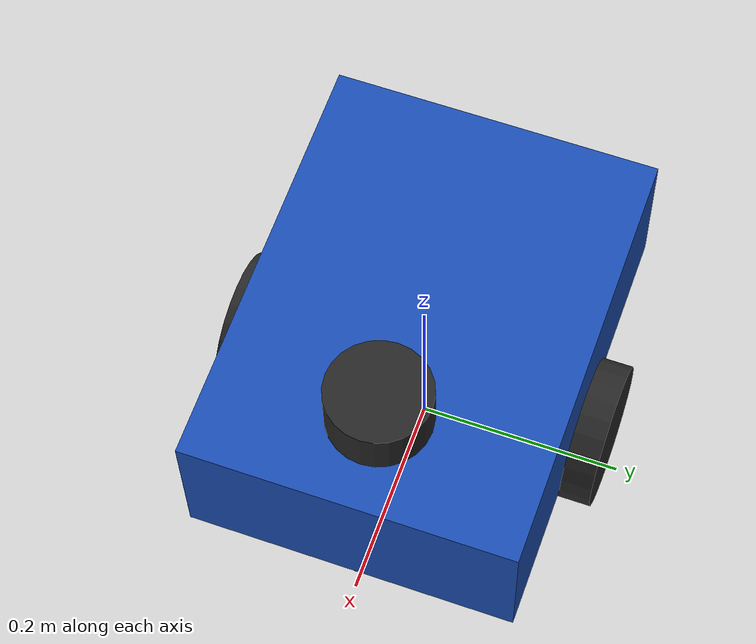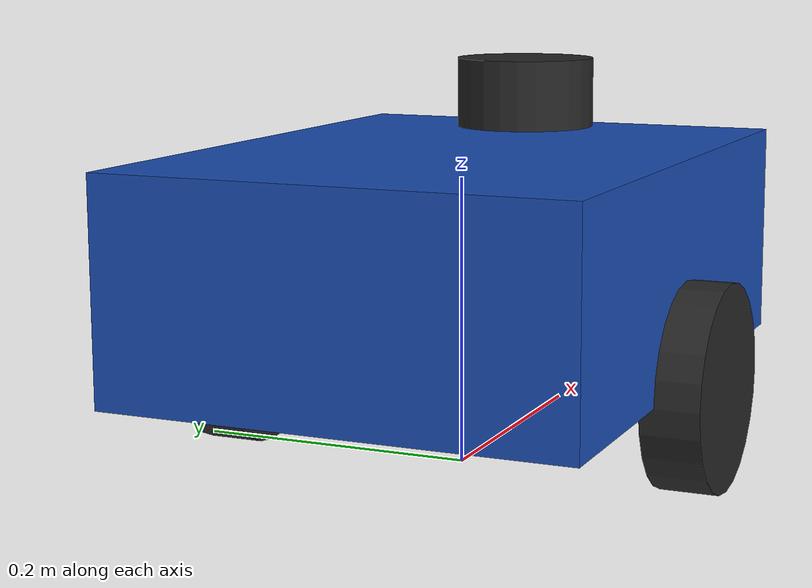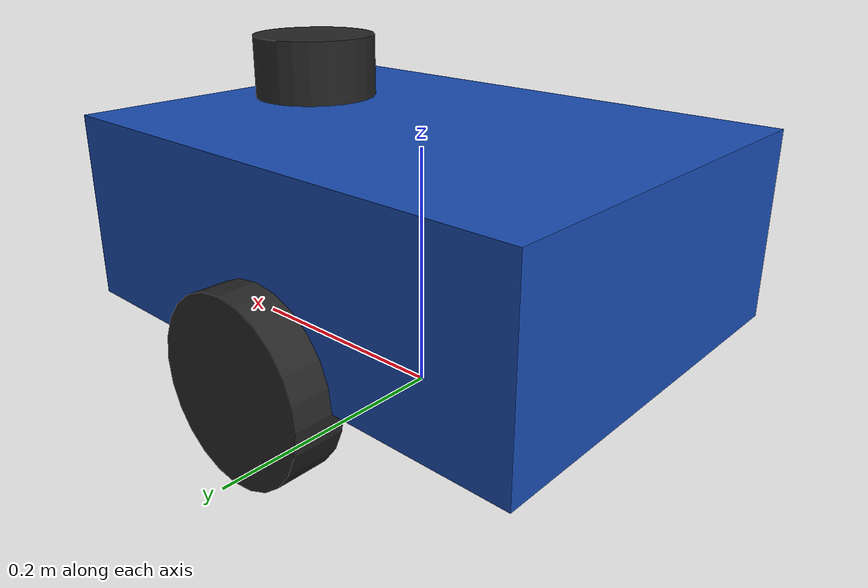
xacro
<?xml version="1.0"?>
<robot name="bip_robot" xmlns:xacro="http://www.ros.org/wiki/xacro">

  <xacro:property name="base_len" value="0.42"/>
  <xacro:property name="base_wid" value="0.32"/>
  <xacro:property name="base_hgt" value="0.15"/>
  <xacro:property name="wheel_rad" value="0.07"/>
  <xacro:property name="wheel_wid" value="0.04"/>
  <xacro:property name="wheel_sep" value="0.34"/>

  <material name="body_blue"><color rgba="0.1 0.3 0.7 1.0"/></material>
  <material name="dark"><color rgba="0.15 0.15 0.15 1.0"/></material>

  <xacro:macro name="box_inertia" params="m x y z">
    <inertial>
      <mass value="${m}"/>
      <inertia ixx="${m/12.0*(y*y+z*z)}" ixy="0" ixz="0"
               iyy="${m/12.0*(x*x+z*z)}" iyz="0"
               izz="${m/12.0*(x*x+y*y)}"/>
    </inertial>
  </xacro:macro>

  <xacro:macro name="cyl_inertia" params="m r h">
    <inertial>
      <mass value="${m}"/>
      <inertia ixx="${m*(3*r*r+h*h)/12.0}" ixy="0" ixz="0"
               iyy="${m*(3*r*r+h*h)/12.0}" iyz="0" izz="${m*r*r/2.0}"/>
    </inertial>
  </xacro:macro>

  <!-- ============================ base ============================ -->
  <link name="base_footprint"/>

  <joint name="base_joint" type="fixed">
    <parent link="base_footprint"/>
    <child link="base_link"/>
    <origin xyz="0 0 ${wheel_rad}" rpy="0 0 0"/>
  </joint>

  <link name="base_link">
    <visual>
      <origin xyz="0 0 ${base_hgt/2}"/>
      <geometry><box size="${base_len} ${base_wid} ${base_hgt}"/></geometry>
      <material name="body_blue"/>
    </visual>
    <collision>
      <origin xyz="0 0 ${base_hgt/2}"/>
      <geometry><box size="${base_len} ${base_wid} ${base_hgt}"/></geometry>
    </collision>
    <xacro:box_inertia m="8.0" x="${base_len}" y="${base_wid}" z="${base_hgt}"/>
  </link>

  <!-- ============================ wheels ============================ -->
  <xacro:macro name="wheel" params="prefix reflect">
    <link name="${prefix}_wheel_link">
      <visual>
        <origin rpy="${pi/2} 0 0"/>
        <geometry><cylinder radius="${wheel_rad}" length="${wheel_wid}"/></geometry>
        <material name="dark"/>
      </visual>
      <collision>
        <origin rpy="${pi/2} 0 0"/>
        <geometry><cylinder radius="${wheel_rad}" length="${wheel_wid}"/></geometry>
      </collision>
      <xacro:cyl_inertia m="0.8" r="${wheel_rad}" h="${wheel_wid}"/>
    </link>
    <joint name="${prefix}_wheel_joint" type="continuous">
      <parent link="base_link"/>
      <child link="${prefix}_wheel_link"/>
      <origin xyz="0 ${reflect*wheel_sep/2} 0" rpy="0 0 0"/>
      <axis xyz="0 1 0"/>
    </joint>
  </xacro:macro>
  <xacro:wheel prefix="left" reflect="1"/>
  <xacro:wheel prefix="right" reflect="-1"/>

  <!-- caster -->
  <link name="caster_link">
    <visual><geometry><sphere radius="0.05"/></geometry><material name="dark"/></visual>
    <collision><geometry><sphere radius="0.05"/></geometry></collision>
    <inertial><mass value="0.3"/>
      <inertia ixx="0.0003" ixy="0" ixz="0" iyy="0.0003" iyz="0" izz="0.0003"/>
    </inertial>
  </link>
  <joint name="caster_joint" type="fixed">
    <parent link="base_link"/>
    <child link="caster_link"/>
    <origin xyz="${base_len/2-0.06} 0 -0.02"/>
  </joint>
  <gazebo reference="caster_link">
    <mu1>0.0</mu1><mu2>0.0</mu2>
  </gazebo>

  <!-- ============================ lidar ============================ -->
  <link name="lidar_link">
    <visual><geometry><cylinder radius="0.05" length="0.05"/></geometry>
      <material name="dark"/></visual>
    <collision><geometry><cylinder radius="0.05" length="0.05"/></geometry></collision>
    <xacro:cyl_inertia m="0.2" r="0.05" h="0.05"/>
  </link>
  <joint name="lidar_joint" type="fixed">
    <parent link="base_link"/>
    <child link="lidar_link"/>
    <origin xyz="0.12 0 ${base_hgt+0.03}"/>
  </joint>

  <gazebo reference="lidar_link">
    <sensor type="ray" name="lidar_sensor">
      <pose>0 0 0 0 0 0</pose>
      <update_rate>10</update_rate>
      <visualize>false</visualize>
      <ray>
        <scan><horizontal>
          <samples>360</samples>
          <resolution>1</resolution>
          <min_angle>-3.14159</min_angle>
          <max_angle>3.14159</max_angle>
        </horizontal></scan>
        <range><min>0.15</min><max>10.0</max><resolution>0.01</resolution></range>
        <noise><type>gaussian</type><mean>0.0</mean><stddev>0.01</stddev></noise>
      </ray>
      <plugin name="lidar_plugin" filename="libgazebo_ros_ray_sensor.so">
        <ros><remapping>~/out:=scan</remapping></ros>
        <output_type>sensor_msgs/LaserScan</output_type>
        <frame_name>lidar_link</frame_name>
      </plugin>
    </sensor>
  </gazebo>

  <!-- ============================ diff drive ============================ -->
  <gazebo>
    <plugin name="diff_drive" filename="libgazebo_ros_diff_drive.so">
      <update_rate>30</update_rate>
      <left_joint>left_wheel_joint</left_joint>
      <right_joint>right_wheel_joint</right_joint>
      <wheel_separation>${wheel_sep}</wheel_separation>
      <wheel_diameter>${2*wheel_rad}</wheel_diameter>
      <max_wheel_torque>20</max_wheel_torque>
      <max_wheel_acceleration>1.5</max_wheel_acceleration>
      <command_topic>cmd_vel</command_topic>
      <publish_odom>true</publish_odom>
      <publish_odom_tf>true</publish_odom_tf>
      <publish_wheel_tf>false</publish_wheel_tf>
      <odometry_topic>odom</odometry_topic>
      <odometry_frame>odom</odometry_frame>
      <robot_base_frame>base_footprint</robot_base_frame>
    </plugin>
    <plugin name="joint_states" filename="libgazebo_ros_joint_state_publisher.so">
      <update_rate>30</update_rate>
      <joint_name>left_wheel_joint</joint_name>
      <joint_name>right_wheel_joint</joint_name>
    </plugin>
  </gazebo>

</robot>
